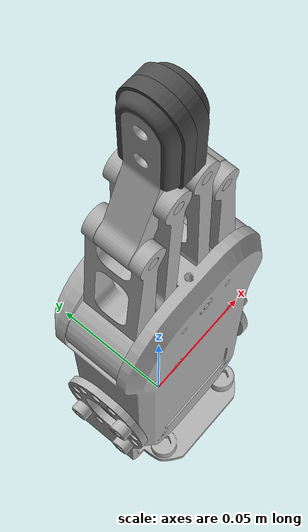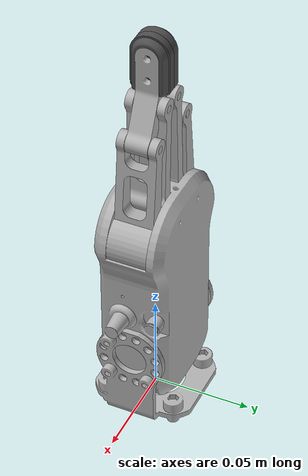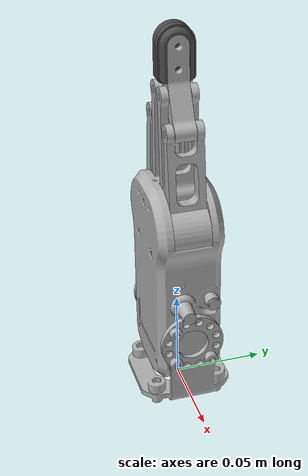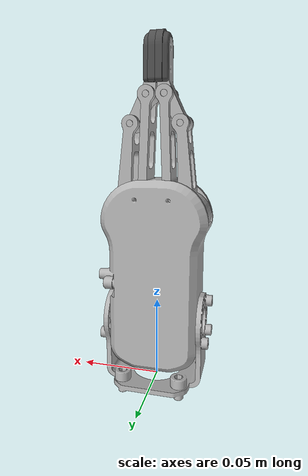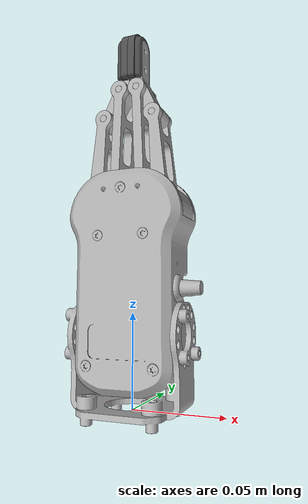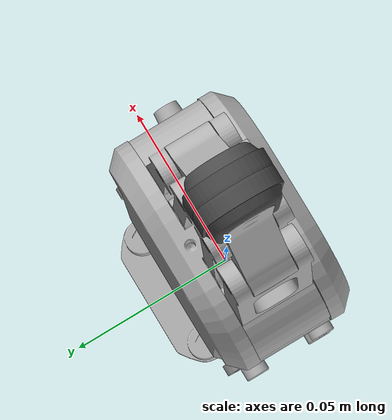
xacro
<?xml version="1.0"?>

<robot xmlns:xacro="http://wiki.ros.org/xacro" name="rg2">
  <xacro:include filename="$(find onrobot_description)/urdf/rg2.urdf.xacro" />

  <link name="world" />

  <xacro:rg2 parent="world" prefix='gripper_'>
    <origin xyz="0.0 0.0 0.0" rpy="0.0 0.0 0.0" />
  </xacro:rg2>
</robot>

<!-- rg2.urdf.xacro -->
<robot xmlns:xacro="http://wiki.ros.org/xacro">

    <xacro:macro name="rg2_finger" params="prefix finger parent reflex">

        <xacro:property name="offset" value="${-30.0*pi/180.0}"/>
        <xacro:property name="multiplier" value="${75.0/0.11*pi/180.0}"/>

        <!-- moment bar -->
        <joint name="${prefix}${finger}_moment_joint" type="revolute">
            <parent link="${parent}"/>
            <child link = "${prefix}${finger}_moment_bar"/>
            <xacro:unless value="${reflex}">
                <origin xyz="0.017 0.0 0.066" rpy="0.0 ${offset} 0.0"/>
            </xacro:unless>
            <xacro:if value="${reflex}">
                <origin xyz="-0.017 0.0 0.066" rpy="0.0 ${offset} ${pi}"/>
            </xacro:if>
            <mimic joint="${prefix}motor_joint" multiplier="${multiplier}" offset="0.0"/>
            <axis xyz="0 1 0"/>
            <limit effort="730" velocity="3.4" lower="0.0" upper="1.31"/>
            <dynamics damping="0.0" friction="0.0"/>
        </joint>

        <link name="${prefix}${finger}_moment_bar">
            <visual>
                <geometry>
                    <mesh filename="package://onrobot_description/meshes/rg2/visual/rg2_finger_moment_bar.dae"/>
                </geometry>
                <material name="LightGrey">
                    <color rgba="0.7 0.7 0.7 1.0"/>
                </material>
            </visual>
            <collision>
                <geometry>
                    <mesh filename="package://onrobot_description/meshes/rg2/collision/rg2_finger_moment_bar.stl"/>
                </geometry>
            </collision>
            <inertial>
                <mass value="0.001"/>
                <inertia ixx="0.0001" ixy="0.0" ixz="0.0" iyy="0.0001" iyz="0.0" izz="0.0001"/>
            </inertial>
        </link>

        <!-- truss bar -->
        <joint name="${prefix}${finger}_truss_joint" type="revolute">
            <parent link="${parent}"/>
            <child link = "${prefix}${finger}_truss_bar"/>
            <xacro:unless value="${reflex}">
                <origin xyz="0.0075 0.0 0.0825" rpy="0.0 ${offset} 0.0"/>
            </xacro:unless>
            <xacro:if value="${reflex}">
                <origin xyz="-0.0075 0.0 0.0825" rpy="0.0 ${offset} ${pi}"/>
            </xacro:if>
            <axis xyz="0 1 0"/>
            <limit effort="730" velocity="3.4" lower="0.0" upper="1.31"/>
            <mimic joint="${prefix}motor_joint" multiplier="${multiplier}" offset="0.0"/>
            <dynamics damping="0.0" friction="0.0"/>
        </joint>

        <link name="${prefix}${finger}_truss_bar">
            <visual>
                <geometry>
                    <mesh filename="package://onrobot_description/meshes/rg2/visual/rg2_finger_truss_bar.dae"/>
                </geometry>
                <material name="LightGrey">
                    <color rgba="0.7 0.7 0.7 1.0"/>
                </material>
            </visual>
            <collision>
                <geometry>
                    <mesh filename="package://onrobot_description/meshes/rg2/collision/rg2_finger_truss_bar.stl"/>
                </geometry>
            </collision>
            <inertial>
                <mass value="0.001"/>
                <inertia ixx="0.0001" ixy="0.0" ixz="0.0" iyy="0.0001" iyz="0.0" izz="0.0001"/>
            </inertial>
        </link>

        <!-- tip bar -->
        <joint name="${prefix}${finger}_tip_joint" type="revolute">
            <parent link = "${prefix}${finger}_moment_bar"/>
            <child link = "${prefix}${finger}_tip_bar"/>
            <origin xyz="0.0256 0.0 0.04868" rpy="0.0 ${-offset} 0.0"/>
            <axis xyz="0 -1 0"/>
            <limit effort="730" velocity="3.4" lower="0.0" upper="1.31"/>
            <mimic joint="${prefix}motor_joint" multiplier="${multiplier}" offset="0.0"/>
            <dynamics damping="0.0" friction="0.0"/>
        </joint>

        <link name="${prefix}${finger}_tip_bar">
            <visual>
                <geometry>
                    <mesh filename="package://onrobot_description/meshes/rg2/visual/rg2_finger_tip_bar.dae"/>
                </geometry>
                <material name="LightGrey">
                    <color rgba="0.7 0.7 0.7 1.0"/>
                </material>
            </visual>
            <collision>
                <geometry>
                    <mesh filename="package://onrobot_description/meshes/rg2/collision/rg2_finger_tip_bar_1.stl"/>
                </geometry>
            </collision>
            <collision>
                <geometry>
                    <mesh filename="package://onrobot_description/meshes/rg2/collision/rg2_finger_tip_bar_2.stl"/>
                </geometry>
            </collision>
            <inertial>
                <mass value="0.001"/>
                <inertia ixx="0.0001" ixy="0.0" ixz="0.0" iyy="0.0001" iyz="0.0" izz="0.0001"/>
            </inertial>
        </link>

        <!-- tip flex -->
        <joint name="${prefix}${finger}_fingertip_joint" type="fixed">
            <parent link="${prefix}${finger}_tip_bar"/>
            <child link = "${prefix}${finger}_fingertip"/>
            <origin xyz="0.0 0.0 0.0" rpy="0.0 0.0 0.0"/>
        </joint>

        <link name="${prefix}${finger}_fingertip">
            <visual>
                <geometry>
                    <mesh filename="package://onrobot_description/meshes/rg2/visual/rg2_fingertip_std.dae"/>
                </geometry>
                <material name="DarkGrey">
                    <color rgba="0.3 0.3 0.3 1.0"/>
                </material>
            </visual>
            <collision>
                <geometry>
                    <mesh filename="package://onrobot_description/meshes/rg2/collision/rg2_fingertip_std.stl"/>
                </geometry>
            </collision>
            <inertial>
                <mass value="0.001"/>
                <inertia ixx="0.0001" ixy="0.0" ixz="0.0" iyy="0.0001" iyz="0.0" izz="0.0001"/>
            </inertial>
        </link>

    </xacro:macro>

    <xacro:macro name="rg2" params="parent *origin prefix:='' mount_angle:=0.0">

        <!-- coupling -->
        <joint name="${prefix}coupling_joint" type="fixed">
            <parent link="${parent}"/>
            <child link = "${prefix}coupling"/>
            <xacro:insert_block name="origin"/>
        </joint>

        <link name="${prefix}coupling">
            <visual>
                <geometry>
                    <mesh filename="package://onrobot_description/meshes/rg2/visual/rg2_gripper_coupling.dae"/>
                </geometry>
                <material name="LightGrey">
                    <color rgba="0.7 0.7 0.7 1.0"/>
                </material>
            </visual>
            <collision>
                <geometry>
                    <mesh filename="package://onrobot_description/meshes/rg2/collision/rg2_gripper_coupling.stl"/>
                </geometry>
            </collision>
            <inertial>
                <mass value="0.09"/>
                <inertia ixx="0.0001" ixy="0.0" ixz="0.0" iyy="0.0001" iyz="0.0" izz="0.0001"/>
            </inertial>
        </link>

        <!-- body -->
        <joint name="${prefix}body_joint" type="fixed">
            <parent link="${prefix}coupling"/>
            <child link = "${prefix}body"/>
            <origin xyz="0.0 0.0 0.039" rpy="${mount_angle} 0.0 0.0"/>
        </joint>

        <link name="${prefix}body">
            <visual>
                <geometry>
                    <mesh filename="package://onrobot_description/meshes/rg2/visual/rg2_gripper_body.dae"/>
                </geometry>
                <material name="LightGrey">
                    <color rgba="0.7 0.7 0.7 1.0"/>
                </material>
            </visual>
            <collision>
                <geometry>
                    <mesh filename="package://onrobot_description/meshes/rg2/collision/rg2_gripper_body.stl"/>
                </geometry>
            </collision>
            <inertial>
                <mass value="0.65"/>
                <inertia ixx="0.0001" ixy="0.0" ixz="0.0" iyy="0.0001" iyz="0.0" izz="0.0001"/>
            </inertial>
        </link>

        <!-- dummy motor joint/link -->
        <joint name="${prefix}motor_joint" type="prismatic">
            <parent link="${prefix}body"/>
            <child link = "${prefix}motor_link"/>
            <origin xyz="0.0 0.0 0.0" rpy="0.0 0.0 0.0"/>
            <axis xyz="1 0 0"/>
            <limit effort="40" velocity="184" lower="0.0" upper="0.110"/>
        </joint>

        <link name="${prefix}motor_link"/>

        <!-- finger 1 -->
        <xacro:rg2_finger parent="${prefix}body" prefix="${prefix}" finger="finger_1" reflex="false"/>

        <!-- finger 2 -->
        <xacro:rg2_finger parent="${prefix}body" prefix="${prefix}" finger="finger_2" reflex="true"/>

    </xacro:macro>

</robot>
